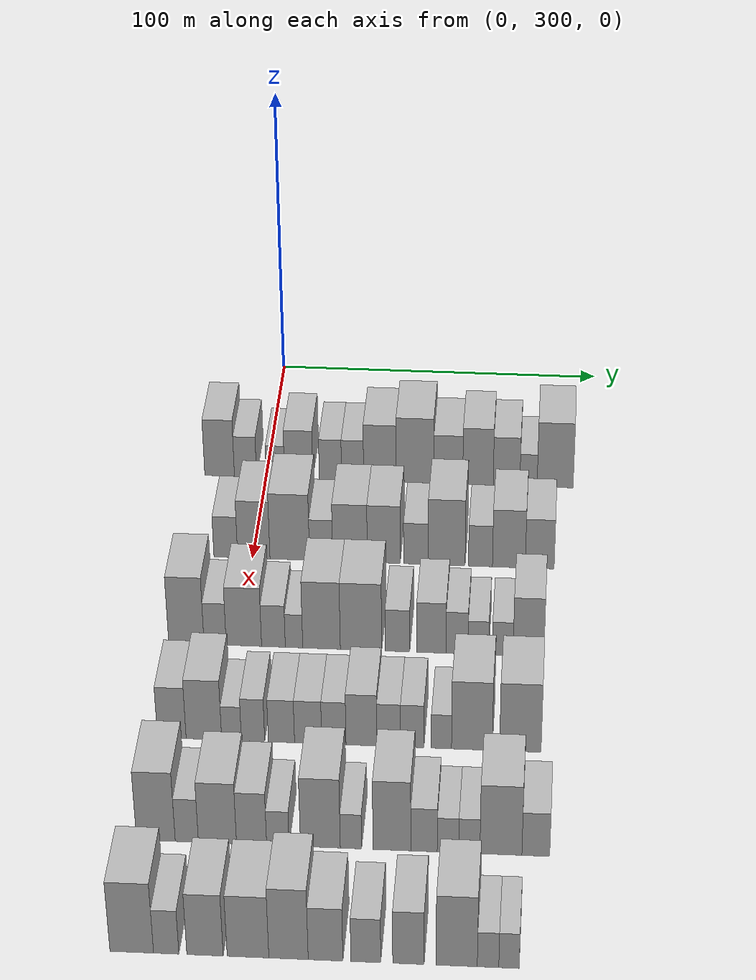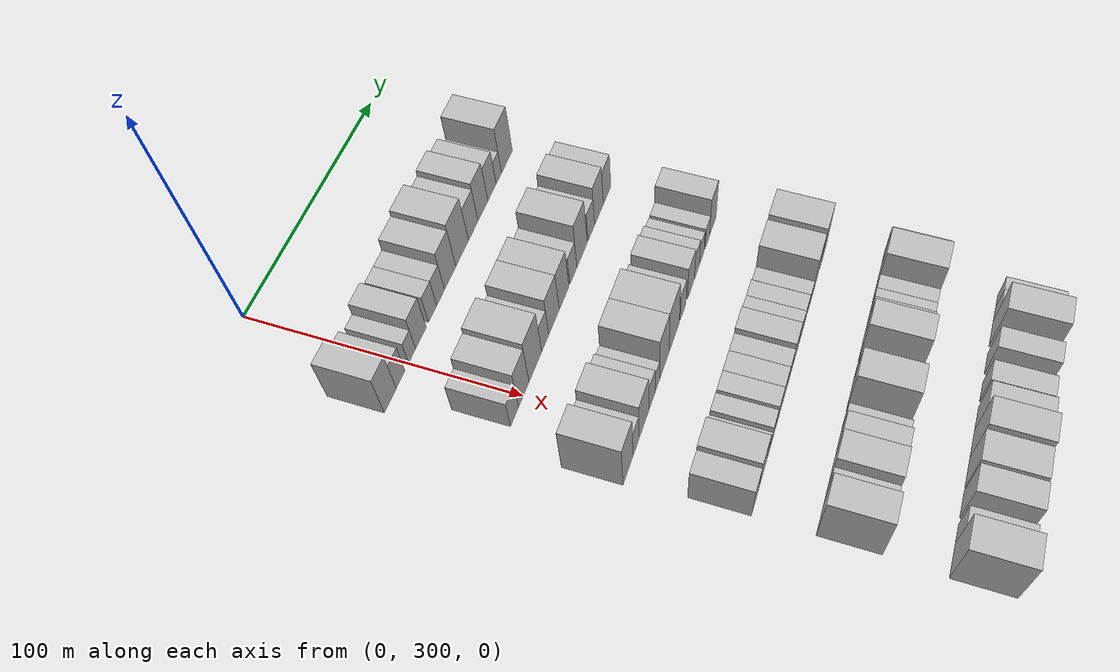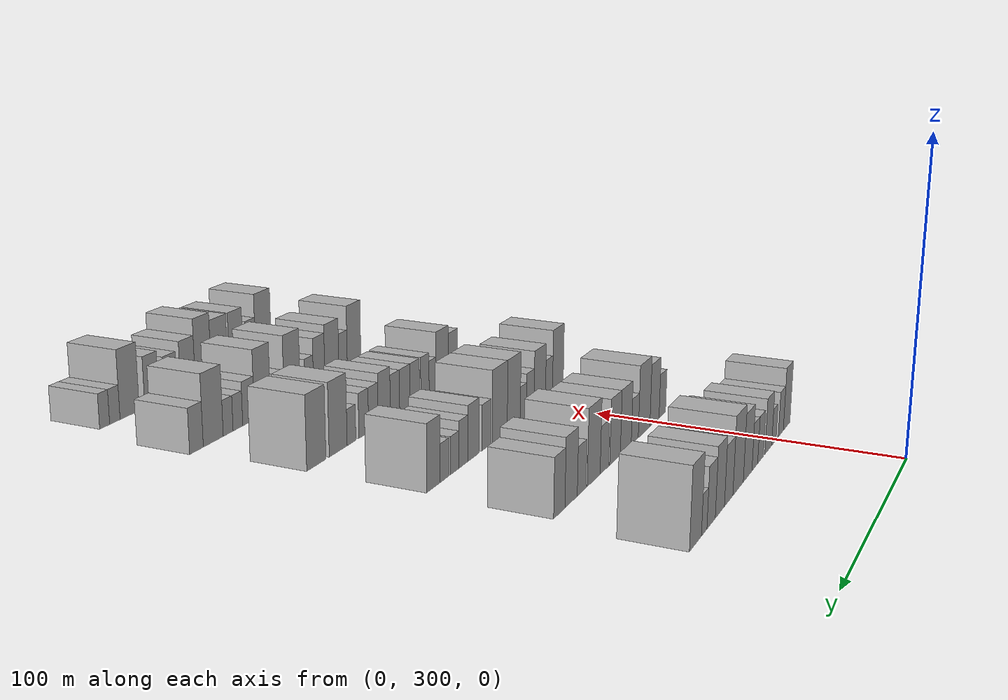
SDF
<sdf version="1.6">
 <world name="default">
  <model name="building_102">
   <static>1</static>
   <pose>50.0000 285.7752 0 0.000000 0.000000 0.000000</pose>
   <link name="link">
    <pose>0 0 10.50 0 0 0</pose>
    <collision name="collision"><geometry><box><size>20.0000 9.1183 21.0000</size></box></geometry></collision>
    <visual name="visual">
     <cast_shadows>0</cast_shadows>
     <geometry><box><size>20.0000 9.1183 21.0000</size></box></geometry>
     <material>
      <script>
       <uri>model://HANNAS_wall/materials/scripts</uri>
       <uri>model://HANNAS_wall/materials/textures</uri>
       <name>vrc/HANNAS_wall</name>
      </script>
     </material>
    </visual>
   </link>
  </model>
  <model name="building_103">
   <static>1</static>
   <pose>50.0000 293.7335 0 0.000000 0.000000 0.000000</pose>
   <link name="link">
    <pose>0 0 7.50 0 0 0</pose>
    <collision name="collision"><geometry><box><size>20.0000 6.7983 15.0000</size></box></geometry></collision>
    <visual name="visual">
     <cast_shadows>0</cast_shadows>
     <geometry><box><size>20.0000 6.7983 15.0000</size></box></geometry>
     <material>
      <script>
       <uri>model://HANNAS_wall/materials/scripts</uri>
       <uri>model://HANNAS_wall/materials/textures</uri>
       <name>vrc/HANNAS_wall</name>
      </script>
     </material>
    </visual>
   </link>
  </model>
  <model name="building_104">
   <static>1</static>
   <pose>50.0000 302.9461 0 0.000000 0.000000 0.000000</pose>
   <link name="link">
    <pose>0 0 6.00 0 0 0</pose>
    <collision name="collision"><geometry><box><size>20.0000 5.6267 12.0000</size></box></geometry></collision>
    <visual name="visual">
     <cast_shadows>0</cast_shadows>
     <geometry><box><size>20.0000 5.6267 12.0000</size></box></geometry>
     <material>
      <script>
       <uri>model://HANNAS_wall/materials/scripts</uri>
       <uri>model://HANNAS_wall/materials/textures</uri>
       <name>vrc/HANNAS_wall</name>
      </script>
     </material>
    </visual>
   </link>
  </model>
  <model name="building_105">
   <static>1</static>
   <pose>50.0000 310.0966 0 0.000000 0.000000 0.000000</pose>
   <link name="link">
    <pose>0 0 9.00 0 0 0</pose>
    <collision name="collision"><geometry><box><size>20.0000 8.6744 18.0000</size></box></geometry></collision>
    <visual name="visual">
     <cast_shadows>0</cast_shadows>
     <geometry><box><size>20.0000 8.6744 18.0000</size></box></geometry>
     <material>
      <script>
       <uri>model://HANNAS_wall/materials/scripts</uri>
       <uri>model://HANNAS_wall/materials/textures</uri>
       <name>vrc/HANNAS_wall</name>
      </script>
     </material>
    </visual>
   </link>
  </model>
  <model name="building_106">
   <static>1</static>
   <pose>50.0000 319.8480 0 0.000000 0.000000 0.000000</pose>
   <link name="link">
    <pose>0 0 7.50 0 0 0</pose>
    <collision name="collision"><geometry><box><size>20.0000 6.8283 15.0000</size></box></geometry></collision>
    <visual name="visual">
     <cast_shadows>0</cast_shadows>
     <geometry><box><size>20.0000 6.8283 15.0000</size></box></geometry>
     <material>
      <script>
       <uri>model://HANNAS_wall/materials/scripts</uri>
       <uri>model://HANNAS_wall/materials/textures</uri>
       <name>vrc/HANNAS_wall</name>
      </script>
     </material>
    </visual>
   </link>
  </model>
  <model name="building_107">
   <static>1</static>
   <pose>50.0000 326.6442 0 0.000000 0.000000 0.000000</pose>
   <link name="link">
    <pose>0 0 7.50 0 0 0</pose>
    <collision name="collision"><geometry><box><size>20.0000 6.7642 15.0000</size></box></geometry></collision>
    <visual name="visual">
     <cast_shadows>0</cast_shadows>
     <geometry><box><size>20.0000 6.7642 15.0000</size></box></geometry>
     <material>
      <script>
       <uri>model://HANNAS_wall/materials/scripts</uri>
       <uri>model://HANNAS_wall/materials/textures</uri>
       <name>vrc/HANNAS_wall</name>
      </script>
     </material>
    </visual>
   </link>
  </model>
  <model name="building_108">
   <static>1</static>
   <pose>50.0000 335.0105 0 0.000000 0.000000 0.000000</pose>
   <link name="link">
    <pose>0 0 10.50 0 0 0</pose>
    <collision name="collision"><geometry><box><size>20.0000 9.9684 21.0000</size></box></geometry></collision>
    <visual name="visual">
     <cast_shadows>0</cast_shadows>
     <geometry><box><size>20.0000 9.9684 21.0000</size></box></geometry>
     <material>
      <script>
       <uri>model://HANNAS_wall/materials/scripts</uri>
       <uri>model://HANNAS_wall/materials/textures</uri>
       <name>vrc/HANNAS_wall</name>
      </script>
     </material>
    </visual>
   </link>
  </model>
  <model name="building_109">
   <static>1</static>
   <pose>50.0000 345.7378 0 0.000000 0.000000 0.000000</pose>
   <link name="link">
    <pose>0 0 12.00 0 0 0</pose>
    <collision name="collision"><geometry><box><size>20.0000 11.4862 24.0000</size></box></geometry></collision>
    <visual name="visual">
     <cast_shadows>0</cast_shadows>
     <geometry><box><size>20.0000 11.4862 24.0000</size></box></geometry>
     <material>
      <script>
       <uri>model://HANNAS_wall/materials/scripts</uri>
       <uri>model://HANNAS_wall/materials/textures</uri>
       <name>vrc/HANNAS_wall</name>
      </script>
     </material>
    </visual>
   </link>
  </model>
  <model name="building_110">
   <static>1</static>
   <pose>50.0000 355.9089 0 0.000000 0.000000 0.000000</pose>
   <link name="link">
    <pose>0 0 9.00 0 0 0</pose>
    <collision name="collision"><geometry><box><size>20.0000 8.8561 18.0000</size></box></geometry></collision>
    <visual name="visual">
     <cast_shadows>0</cast_shadows>
     <geometry><box><size>20.0000 8.8561 18.0000</size></box></geometry>
     <material>
      <script>
       <uri>model://HANNAS_wall/materials/scripts</uri>
       <uri>model://HANNAS_wall/materials/textures</uri>
       <name>vrc/HANNAS_wall</name>
      </script>
     </material>
    </visual>
   </link>
  </model>
  <model name="building_111">
   <static>1</static>
   <pose>50.0000 364.9938 0 0.000000 0.000000 0.000000</pose>
   <link name="link">
    <pose>0 0 10.50 0 0 0</pose>
    <collision name="collision"><geometry><box><size>20.0000 9.3136 21.0000</size></box></geometry></collision>
    <visual name="visual">
     <cast_shadows>0</cast_shadows>
     <geometry><box><size>20.0000 9.3136 21.0000</size></box></geometry>
     <material>
      <script>
       <uri>model://HANNAS_wall/materials/scripts</uri>
       <uri>model://HANNAS_wall/materials/textures</uri>
       <name>vrc/HANNAS_wall</name>
      </script>
     </material>
    </visual>
   </link>
  </model>
  <model name="building_112">
   <static>1</static>
   <pose>50.0000 373.7152 0 0.000000 0.000000 0.000000</pose>
   <link name="link">
    <pose>0 0 9.00 0 0 0</pose>
    <collision name="collision"><geometry><box><size>20.0000 8.1293 18.0000</size></box></geometry></collision>
    <visual name="visual">
     <cast_shadows>0</cast_shadows>
     <geometry><box><size>20.0000 8.1293 18.0000</size></box></geometry>
     <material>
      <script>
       <uri>model://HANNAS_wall/materials/scripts</uri>
       <uri>model://HANNAS_wall/materials/textures</uri>
       <name>vrc/HANNAS_wall</name>
      </script>
     </material>
    </visual>
   </link>
  </model>
  <model name="building_113">
   <static>1</static>
   <pose>50.0000 380.3990 0 0.000000 0.000000 0.000000</pose>
   <link name="link">
    <pose>0 0 6.00 0 0 0</pose>
    <collision name="collision"><geometry><box><size>20.0000 5.2383 12.0000</size></box></geometry></collision>
    <visual name="visual">
     <cast_shadows>0</cast_shadows>
     <geometry><box><size>20.0000 5.2383 12.0000</size></box></geometry>
     <material>
      <script>
       <uri>model://HANNAS_wall/materials/scripts</uri>
       <uri>model://HANNAS_wall/materials/textures</uri>
       <name>vrc/HANNAS_wall</name>
      </script>
     </material>
    </visual>
   </link>
  </model>
  <model name="building_114">
   <static>1</static>
   <pose>50.0000 388.4982 0 0.000000 0.000000 0.000000</pose>
   <link name="link">
    <pose>0 0 12.00 0 0 0</pose>
    <collision name="collision"><geometry><box><size>20.0000 10.9601 24.0000</size></box></geometry></collision>
    <visual name="visual">
     <cast_shadows>0</cast_shadows>
     <geometry><box><size>20.0000 10.9601 24.0000</size></box></geometry>
     <material>
      <script>
       <uri>model://HANNAS_wall/materials/scripts</uri>
       <uri>model://HANNAS_wall/materials/textures</uri>
       <name>vrc/HANNAS_wall</name>
      </script>
     </material>
    </visual>
   </link>
  </model>
  <model name="building_234">
   <static>1</static>
   <pose>90.0000 292.1431 0 0.000000 0.000000 0.000000</pose>
   <link name="link">
    <pose>0 0 7.50 0 0 0</pose>
    <collision name="collision"><geometry><box><size>20.0000 7.0229 15.0000</size></box></geometry></collision>
    <visual name="visual">
     <cast_shadows>0</cast_shadows>
     <geometry><box><size>20.0000 7.0229 15.0000</size></box></geometry>
     <material>
      <script>
       <uri>model://HANNAS_wall/materials/scripts</uri>
       <uri>model://HANNAS_wall/materials/textures</uri>
       <name>vrc/HANNAS_wall</name>
      </script>
     </material>
    </visual>
   </link>
  </model>
  <model name="building_235">
   <static>1</static>
   <pose>90.0000 300.4428 0 0.000000 0.000000 0.000000</pose>
   <link name="link">
    <pose>0 0 10.50 0 0 0</pose>
    <collision name="collision"><geometry><box><size>20.0000 9.5765 21.0000</size></box></geometry></collision>
    <visual name="visual">
     <cast_shadows>0</cast_shadows>
     <geometry><box><size>20.0000 9.5765 21.0000</size></box></geometry>
     <material>
      <script>
       <uri>model://HANNAS_wall/materials/scripts</uri>
       <uri>model://HANNAS_wall/materials/textures</uri>
       <name>vrc/HANNAS_wall</name>
      </script>
     </material>
    </visual>
   </link>
  </model>
  <model name="building_236">
   <static>1</static>
   <pose>90.0000 311.0871 0 0.000000 0.000000 0.000000</pose>
   <link name="link">
    <pose>0 0 12.00 0 0 0</pose>
    <collision name="collision"><geometry><box><size>20.0000 11.7122 24.0000</size></box></geometry></collision>
    <visual name="visual">
     <cast_shadows>0</cast_shadows>
     <geometry><box><size>20.0000 11.7122 24.0000</size></box></geometry>
     <material>
      <script>
       <uri>model://HANNAS_wall/materials/scripts</uri>
       <uri>model://HANNAS_wall/materials/textures</uri>
       <name>vrc/HANNAS_wall</name>
      </script>
     </material>
    </visual>
   </link>
  </model>
  <model name="building_237">
   <static>1</static>
   <pose>90.0000 320.3659 0 0.000000 0.000000 0.000000</pose>
   <link name="link">
    <pose>0 0 7.50 0 0 0</pose>
    <collision name="collision"><geometry><box><size>20.0000 6.8455 15.0000</size></box></geometry></collision>
    <visual name="visual">
     <cast_shadows>0</cast_shadows>
     <geometry><box><size>20.0000 6.8455 15.0000</size></box></geometry>
     <material>
      <script>
       <uri>model://HANNAS_wall/materials/scripts</uri>
       <uri>model://HANNAS_wall/materials/textures</uri>
       <name>vrc/HANNAS_wall</name>
      </script>
     </material>
    </visual>
   </link>
  </model>
  <model name="building_238">
   <static>1</static>
   <pose>90.0000 328.9008 0 0.000000 0.000000 0.000000</pose>
   <link name="link">
    <pose>0 0 10.50 0 0 0</pose>
    <collision name="collision"><geometry><box><size>20.0000 10.2242 21.0000</size></box></geometry></collision>
    <visual name="visual">
     <cast_shadows>0</cast_shadows>
     <geometry><box><size>20.0000 10.2242 21.0000</size></box></geometry>
     <material>
      <script>
       <uri>model://HANNAS_wall/materials/scripts</uri>
       <uri>model://HANNAS_wall/materials/textures</uri>
       <name>vrc/HANNAS_wall</name>
      </script>
     </material>
    </visual>
   </link>
  </model>
  <model name="building_239">
   <static>1</static>
   <pose>90.0000 338.8520 0 0.000000 0.000000 0.000000</pose>
   <link name="link">
    <pose>0 0 10.50 0 0 0</pose>
    <collision name="collision"><geometry><box><size>20.0000 9.6782 21.0000</size></box></geometry></collision>
    <visual name="visual">
     <cast_shadows>0</cast_shadows>
     <geometry><box><size>20.0000 9.6782 21.0000</size></box></geometry>
     <material>
      <script>
       <uri>model://HANNAS_wall/materials/scripts</uri>
       <uri>model://HANNAS_wall/materials/textures</uri>
       <name>vrc/HANNAS_wall</name>
      </script>
     </material>
    </visual>
   </link>
  </model>
  <model name="building_240">
   <static>1</static>
   <pose>90.0000 348.3292 0 0.000000 0.000000 0.000000</pose>
   <link name="link">
    <pose>0 0 7.50 0 0 0</pose>
    <collision name="collision"><geometry><box><size>20.0000 7.2762 15.0000</size></box></geometry></collision>
    <visual name="visual">
     <cast_shadows>0</cast_shadows>
     <geometry><box><size>20.0000 7.2762 15.0000</size></box></geometry>
     <material>
      <script>
       <uri>model://HANNAS_wall/materials/scripts</uri>
       <uri>model://HANNAS_wall/materials/textures</uri>
       <name>vrc/HANNAS_wall</name>
      </script>
     </material>
    </visual>
   </link>
  </model>
  <model name="building_241">
   <static>1</static>
   <pose>90.0000 357.3821 0 0.000000 0.000000 0.000000</pose>
   <link name="link">
    <pose>0 0 12.00 0 0 0</pose>
    <collision name="collision"><geometry><box><size>20.0000 10.8295 24.0000</size></box></geometry></collision>
    <visual name="visual">
     <cast_shadows>0</cast_shadows>
     <geometry><box><size>20.0000 10.8295 24.0000</size></box></geometry>
     <material>
      <script>
       <uri>model://HANNAS_wall/materials/scripts</uri>
       <uri>model://HANNAS_wall/materials/textures</uri>
       <name>vrc/HANNAS_wall</name>
      </script>
     </material>
    </visual>
   </link>
  </model>
  <model name="building_242">
   <static>1</static>
   <pose>90.0000 367.3246 0 0.000000 0.000000 0.000000</pose>
   <link name="link">
    <pose>0 0 7.50 0 0 0</pose>
    <collision name="collision"><geometry><box><size>20.0000 7.0555 15.0000</size></box></geometry></collision>
    <visual name="visual">
     <cast_shadows>0</cast_shadows>
     <geometry><box><size>20.0000 7.0555 15.0000</size></box></geometry>
     <material>
      <script>
       <uri>model://HANNAS_wall/materials/scripts</uri>
       <uri>model://HANNAS_wall/materials/textures</uri>
       <name>vrc/HANNAS_wall</name>
      </script>
     </material>
    </visual>
   </link>
  </model>
  <model name="building_243">
   <static>1</static>
   <pose>90.0000 375.6701 0 0.000000 0.000000 0.000000</pose>
   <link name="link">
    <pose>0 0 10.50 0 0 0</pose>
    <collision name="collision"><geometry><box><size>20.0000 9.6357 21.0000</size></box></geometry></collision>
    <visual name="visual">
     <cast_shadows>0</cast_shadows>
     <geometry><box><size>20.0000 9.6357 21.0000</size></box></geometry>
     <material>
      <script>
       <uri>model://HANNAS_wall/materials/scripts</uri>
       <uri>model://HANNAS_wall/materials/textures</uri>
       <name>vrc/HANNAS_wall</name>
      </script>
     </material>
    </visual>
   </link>
  </model>
  <model name="building_244">
   <static>1</static>
   <pose>90.0000 384.7180 0 0.000000 0.000000 0.000000</pose>
   <link name="link">
    <pose>0 0 9.00 0 0 0</pose>
    <collision name="collision"><geometry><box><size>20.0000 8.4599 18.0000</size></box></geometry></collision>
    <visual name="visual">
     <cast_shadows>0</cast_shadows>
     <geometry><box><size>20.0000 8.4599 18.0000</size></box></geometry>
     <material>
      <script>
       <uri>model://HANNAS_wall/materials/scripts</uri>
       <uri>model://HANNAS_wall/materials/textures</uri>
       <name>vrc/HANNAS_wall</name>
      </script>
     </material>
    </visual>
   </link>
  </model>
  <model name="building_380">
   <static>1</static>
   <pose>130.0000 285.3534 0 0.000000 0.000000 0.000000</pose>
   <link name="link">
    <pose>0 0 12.00 0 0 0</pose>
    <collision name="collision"><geometry><box><size>20.0000 10.0763 24.0000</size></box></geometry></collision>
    <visual name="visual">
     <cast_shadows>0</cast_shadows>
     <geometry><box><size>20.0000 10.0763 24.0000</size></box></geometry>
     <material>
      <script>
       <uri>model://HANNAS_wall/materials/scripts</uri>
       <uri>model://HANNAS_wall/materials/textures</uri>
       <name>vrc/HANNAS_wall</name>
      </script>
     </material>
    </visual>
   </link>
  </model>
  <model name="building_381">
   <static>1</static>
   <pose>130.0000 293.5569 0 0.000000 0.000000 0.000000</pose>
   <link name="link">
    <pose>0 0 7.50 0 0 0</pose>
    <collision name="collision"><geometry><box><size>20.0000 6.3307 15.0000</size></box></geometry></collision>
    <visual name="visual">
     <cast_shadows>0</cast_shadows>
     <geometry><box><size>20.0000 6.3307 15.0000</size></box></geometry>
     <material>
      <script>
       <uri>model://HANNAS_wall/materials/scripts</uri>
       <uri>model://HANNAS_wall/materials/textures</uri>
       <name>vrc/HANNAS_wall</name>
      </script>
     </material>
    </visual>
   </link>
  </model>
  <model name="building_382">
   <static>1</static>
   <pose>130.0000 301.7627 0 0.000000 0.000000 0.000000</pose>
   <link name="link">
    <pose>0 0 10.50 0 0 0</pose>
    <collision name="collision"><geometry><box><size>20.0000 10.0807 21.0000</size></box></geometry></collision>
    <visual name="visual">
     <cast_shadows>0</cast_shadows>
     <geometry><box><size>20.0000 10.0807 21.0000</size></box></geometry>
     <material>
      <script>
       <uri>model://HANNAS_wall/materials/scripts</uri>
       <uri>model://HANNAS_wall/materials/textures</uri>
       <name>vrc/HANNAS_wall</name>
      </script>
     </material>
    </visual>
   </link>
  </model>
  <model name="building_383">
   <static>1</static>
   <pose>130.0000 310.1778 0 0.000000 0.000000 0.000000</pose>
   <link name="link">
    <pose>0 0 7.50 0 0 0</pose>
    <collision name="collision"><geometry><box><size>20.0000 6.7496 15.0000</size></box></geometry></collision>
    <visual name="visual">
     <cast_shadows>0</cast_shadows>
     <geometry><box><size>20.0000 6.7496 15.0000</size></box></geometry>
     <material>
      <script>
       <uri>model://HANNAS_wall/materials/scripts</uri>
       <uri>model://HANNAS_wall/materials/textures</uri>
       <name>vrc/HANNAS_wall</name>
      </script>
     </material>
    </visual>
   </link>
  </model>
  <model name="building_384">
   <static>1</static>
   <pose>130.0000 316.0339 0 0.000000 0.000000 0.000000</pose>
   <link name="link">
    <pose>0 0 6.00 0 0 0</pose>
    <collision name="collision"><geometry><box><size>20.0000 4.9626 12.0000</size></box></geometry></collision>
    <visual name="visual">
     <cast_shadows>0</cast_shadows>
     <geometry><box><size>20.0000 4.9626 12.0000</size></box></geometry>
     <material>
      <script>
       <uri>model://HANNAS_wall/materials/scripts</uri>
       <uri>model://HANNAS_wall/materials/textures</uri>
       <name>vrc/HANNAS_wall</name>
      </script>
     </material>
    </visual>
   </link>
  </model>
  <model name="building_385">
   <static>1</static>
   <pose>130.0000 323.8561 0 0.000000 0.000000 0.000000</pose>
   <link name="link">
    <pose>0 0 12.00 0 0 0</pose>
    <collision name="collision"><geometry><box><size>20.0000 10.6819 24.0000</size></box></geometry></collision>
    <visual name="visual">
     <cast_shadows>0</cast_shadows>
     <geometry><box><size>20.0000 10.6819 24.0000</size></box></geometry>
     <material>
      <script>
       <uri>model://HANNAS_wall/materials/scripts</uri>
       <uri>model://HANNAS_wall/materials/textures</uri>
       <name>vrc/HANNAS_wall</name>
      </script>
     </material>
    </visual>
   </link>
  </model>
  <model name="building_386">
   <static>1</static>
   <pose>130.0000 335.0658 0 0.000000 0.000000 0.000000</pose>
   <link name="link">
    <pose>0 0 12.00 0 0 0</pose>
    <collision name="collision"><geometry><box><size>20.0000 11.7375 24.0000</size></box></geometry></collision>
    <visual name="visual">
     <cast_shadows>0</cast_shadows>
     <geometry><box><size>20.0000 11.7375 24.0000</size></box></geometry>
     <material>
      <script>
       <uri>model://HANNAS_wall/materials/scripts</uri>
       <uri>model://HANNAS_wall/materials/textures</uri>
       <name>vrc/HANNAS_wall</name>
      </script>
     </material>
    </visual>
   </link>
  </model>
  <model name="building_387">
   <static>1</static>
   <pose>130.0000 345.4022 0 0.000000 0.000000 0.000000</pose>
   <link name="link">
    <pose>0 0 7.50 0 0 0</pose>
    <collision name="collision"><geometry><box><size>20.0000 6.9352 15.0000</size></box></geometry></collision>
    <visual name="visual">
     <cast_shadows>0</cast_shadows>
     <geometry><box><size>20.0000 6.9352 15.0000</size></box></geometry>
     <material>
      <script>
       <uri>model://HANNAS_wall/materials/scripts</uri>
       <uri>model://HANNAS_wall/materials/textures</uri>
       <name>vrc/HANNAS_wall</name>
      </script>
     </material>
    </visual>
   </link>
  </model>
  <model name="building_388">
   <static>1</static>
   <pose>130.0000 355.0157 0 0.000000 0.000000 0.000000</pose>
   <link name="link">
    <pose>0 0 9.00 0 0 0</pose>
    <collision name="collision"><geometry><box><size>20.0000 8.2919 18.0000</size></box></geometry></collision>
    <visual name="visual">
     <cast_shadows>0</cast_shadows>
     <geometry><box><size>20.0000 8.2919 18.0000</size></box></geometry>
     <material>
      <script>
       <uri>model://HANNAS_wall/materials/scripts</uri>
       <uri>model://HANNAS_wall/materials/textures</uri>
       <name>vrc/HANNAS_wall</name>
      </script>
     </material>
    </visual>
   </link>
  </model>
  <model name="building_389">
   <static>1</static>
   <pose>130.0000 362.2595 0 0.000000 0.000000 0.000000</pose>
   <link name="link">
    <pose>0 0 7.50 0 0 0</pose>
    <collision name="collision"><geometry><box><size>20.0000 6.1959 15.0000</size></box></geometry></collision>
    <visual name="visual">
     <cast_shadows>0</cast_shadows>
     <geometry><box><size>20.0000 6.1959 15.0000</size></box></geometry>
     <material>
      <script>
       <uri>model://HANNAS_wall/materials/scripts</uri>
       <uri>model://HANNAS_wall/materials/textures</uri>
       <name>vrc/HANNAS_wall</name>
      </script>
     </material>
    </visual>
   </link>
  </model>
  <model name="building_390">
   <static>1</static>
   <pose>130.0000 368.2835 0 0.000000 0.000000 0.000000</pose>
   <link name="link">
    <pose>0 0 6.00 0 0 0</pose>
    <collision name="collision"><geometry><box><size>20.0000 5.8521 12.0000</size></box></geometry></collision>
    <visual name="visual">
     <cast_shadows>0</cast_shadows>
     <geometry><box><size>20.0000 5.8521 12.0000</size></box></geometry>
     <material>
      <script>
       <uri>model://HANNAS_wall/materials/scripts</uri>
       <uri>model://HANNAS_wall/materials/textures</uri>
       <name>vrc/HANNAS_wall</name>
      </script>
     </material>
    </visual>
   </link>
  </model>
  <model name="building_391">
   <static>1</static>
   <pose>130.0000 375.1691 0 0.000000 0.000000 0.000000</pose>
   <link name="link">
    <pose>0 0 6.00 0 0 0</pose>
    <collision name="collision"><geometry><box><size>20.0000 5.9192 12.0000</size></box></geometry></collision>
    <visual name="visual">
     <cast_shadows>0</cast_shadows>
     <geometry><box><size>20.0000 5.9192 12.0000</size></box></geometry>
     <material>
      <script>
       <uri>model://HANNAS_wall/materials/scripts</uri>
       <uri>model://HANNAS_wall/materials/textures</uri>
       <name>vrc/HANNAS_wall</name>
      </script>
     </material>
    </visual>
   </link>
  </model>
  <model name="building_392">
   <static>1</static>
   <pose>130.0000 382.4756 0 0.000000 0.000000 0.000000</pose>
   <link name="link">
    <pose>0 0 10.50 0 0 0</pose>
    <collision name="collision"><geometry><box><size>20.0000 8.6937 21.0000</size></box></geometry></collision>
    <visual name="visual">
     <cast_shadows>0</cast_shadows>
     <geometry><box><size>20.0000 8.6937 21.0000</size></box></geometry>
     <material>
      <script>
       <uri>model://HANNAS_wall/materials/scripts</uri>
       <uri>model://HANNAS_wall/materials/textures</uri>
       <name>vrc/HANNAS_wall</name>
      </script>
     </material>
    </visual>
   </link>
  </model>
  <model name="building_512">
   <static>1</static>
   <pose>170.0000 286.2847 0 0.000000 0.000000 0.000000</pose>
   <link name="link">
    <pose>0 0 9.00 0 0 0</pose>
    <collision name="collision"><geometry><box><size>20.0000 7.8461 18.0000</size></box></geometry></collision>
    <visual name="visual">
     <cast_shadows>0</cast_shadows>
     <geometry><box><size>20.0000 7.8461 18.0000</size></box></geometry>
     <material>
      <script>
       <uri>model://HANNAS_wall/materials/scripts</uri>
       <uri>model://HANNAS_wall/materials/textures</uri>
       <name>vrc/HANNAS_wall</name>
      </script>
     </material>
    </visual>
   </link>
  </model>
  <model name="building_513">
   <static>1</static>
   <pose>170.0000 295.0794 0 0.000000 0.000000 0.000000</pose>
   <link name="link">
    <pose>0 0 10.50 0 0 0</pose>
    <collision name="collision"><geometry><box><size>20.0000 9.7433 21.0000</size></box></geometry></collision>
    <visual name="visual">
     <cast_shadows>0</cast_shadows>
     <geometry><box><size>20.0000 9.7433 21.0000</size></box></geometry>
     <material>
      <script>
       <uri>model://HANNAS_wall/materials/scripts</uri>
       <uri>model://HANNAS_wall/materials/textures</uri>
       <name>vrc/HANNAS_wall</name>
      </script>
     </material>
    </visual>
   </link>
  </model>
  <model name="building_514">
   <static>1</static>
   <pose>170.0000 302.6440 0 0.000000 0.000000 0.000000</pose>
   <link name="link">
    <pose>0 0 6.00 0 0 0</pose>
    <collision name="collision"><geometry><box><size>20.0000 5.3858 12.0000</size></box></geometry></collision>
    <visual name="visual">
     <cast_shadows>0</cast_shadows>
     <geometry><box><size>20.0000 5.3858 12.0000</size></box></geometry>
     <material>
      <script>
       <uri>model://HANNAS_wall/materials/scripts</uri>
       <uri>model://HANNAS_wall/materials/textures</uri>
       <name>vrc/HANNAS_wall</name>
      </script>
     </material>
    </visual>
   </link>
  </model>
  <model name="building_515">
   <static>1</static>
   <pose>170.0000 308.5276 0 0.000000 0.000000 0.000000</pose>
   <link name="link">
    <pose>0 0 7.50 0 0 0</pose>
    <collision name="collision"><geometry><box><size>20.0000 6.3815 15.0000</size></box></geometry></collision>
    <visual name="visual">
     <cast_shadows>0</cast_shadows>
     <geometry><box><size>20.0000 6.3815 15.0000</size></box></geometry>
     <material>
      <script>
       <uri>model://HANNAS_wall/materials/scripts</uri>
       <uri>model://HANNAS_wall/materials/textures</uri>
       <name>vrc/HANNAS_wall</name>
      </script>
     </material>
    </visual>
   </link>
  </model>
  <model name="building_516">
   <static>1</static>
   <pose>170.0000 316.2947 0 0.000000 0.000000 0.000000</pose>
   <link name="link">
    <pose>0 0 7.50 0 0 0</pose>
    <collision name="collision"><geometry><box><size>20.0000 7.1526 15.0000</size></box></geometry></collision>
    <visual name="visual">
     <cast_shadows>0</cast_shadows>
     <geometry><box><size>20.0000 7.1526 15.0000</size></box></geometry>
     <material>
      <script>
       <uri>model://HANNAS_wall/materials/scripts</uri>
       <uri>model://HANNAS_wall/materials/textures</uri>
       <name>vrc/HANNAS_wall</name>
      </script>
     </material>
    </visual>
   </link>
  </model>
  <model name="building_517">
   <static>1</static>
   <pose>170.0000 323.5796 0 0.000000 0.000000 0.000000</pose>
   <link name="link">
    <pose>0 0 7.50 0 0 0</pose>
    <collision name="collision"><geometry><box><size>20.0000 7.4172 15.0000</size></box></geometry></collision>
    <visual name="visual">
     <cast_shadows>0</cast_shadows>
     <geometry><box><size>20.0000 7.4172 15.0000</size></box></geometry>
     <material>
      <script>
       <uri>model://HANNAS_wall/materials/scripts</uri>
       <uri>model://HANNAS_wall/materials/textures</uri>
       <name>vrc/HANNAS_wall</name>
      </script>
     </material>
    </visual>
   </link>
  </model>
  <model name="building_518">
   <static>1</static>
   <pose>170.0000 330.6040 0 0.000000 0.000000 0.000000</pose>
   <link name="link">
    <pose>0 0 7.50 0 0 0</pose>
    <collision name="collision"><geometry><box><size>20.0000 6.6316 15.0000</size></box></geometry></collision>
    <visual name="visual">
     <cast_shadows>0</cast_shadows>
     <geometry><box><size>20.0000 6.6316 15.0000</size></box></geometry>
     <material>
      <script>
       <uri>model://HANNAS_wall/materials/scripts</uri>
       <uri>model://HANNAS_wall/materials/textures</uri>
       <name>vrc/HANNAS_wall</name>
      </script>
     </material>
    </visual>
   </link>
  </model>
  <model name="building_519">
   <static>1</static>
   <pose>170.0000 338.1189 0 0.000000 0.000000 0.000000</pose>
   <link name="link">
    <pose>0 0 9.00 0 0 0</pose>
    <collision name="collision"><geometry><box><size>20.0000 8.3982 18.0000</size></box></geometry></collision>
    <visual name="visual">
     <cast_shadows>0</cast_shadows>
     <geometry><box><size>20.0000 8.3982 18.0000</size></box></geometry>
     <material>
      <script>
       <uri>model://HANNAS_wall/materials/scripts</uri>
       <uri>model://HANNAS_wall/materials/textures</uri>
       <name>vrc/HANNAS_wall</name>
      </script>
     </material>
    </visual>
   </link>
  </model>
  <model name="building_520">
   <static>1</static>
   <pose>170.0000 345.5341 0 0.000000 0.000000 0.000000</pose>
   <link name="link">
    <pose>0 0 7.50 0 0 0</pose>
    <collision name="collision"><geometry><box><size>20.0000 6.4322 15.0000</size></box></geometry></collision>
    <visual name="visual">
     <cast_shadows>0</cast_shadows>
     <geometry><box><size>20.0000 6.4322 15.0000</size></box></geometry>
     <material>
      <script>
       <uri>model://HANNAS_wall/materials/scripts</uri>
       <uri>model://HANNAS_wall/materials/textures</uri>
       <name>vrc/HANNAS_wall</name>
      </script>
     </material>
    </visual>
   </link>
  </model>
  <model name="building_521">
   <static>1</static>
   <pose>170.0000 351.9374 0 0.000000 0.000000 0.000000</pose>
   <link name="link">
    <pose>0 0 7.50 0 0 0</pose>
    <collision name="collision"><geometry><box><size>20.0000 6.3743 15.0000</size></box></geometry></collision>
    <visual name="visual">
     <cast_shadows>0</cast_shadows>
     <geometry><box><size>20.0000 6.3743 15.0000</size></box></geometry>
     <material>
      <script>
       <uri>model://HANNAS_wall/materials/scripts</uri>
       <uri>model://HANNAS_wall/materials/textures</uri>
       <name>vrc/HANNAS_wall</name>
      </script>
     </material>
    </visual>
   </link>
  </model>
  <model name="building_522">
   <static>1</static>
   <pose>170.0000 359.8731 0 0.000000 0.000000 0.000000</pose>
   <link name="link">
    <pose>0 0 6.00 0 0 0</pose>
    <collision name="collision"><geometry><box><size>20.0000 5.4970 12.0000</size></box></geometry></collision>
    <visual name="visual">
     <cast_shadows>0</cast_shadows>
     <geometry><box><size>20.0000 5.4970 12.0000</size></box></geometry>
     <material>
      <script>
       <uri>model://HANNAS_wall/materials/scripts</uri>
       <uri>model://HANNAS_wall/materials/textures</uri>
       <name>vrc/HANNAS_wall</name>
      </script>
     </material>
    </visual>
   </link>
  </model>
  <model name="building_523">
   <static>1</static>
   <pose>170.0000 368.1466 0 0.000000 0.000000 0.000000</pose>
   <link name="link">
    <pose>0 0 12.00 0 0 0</pose>
    <collision name="collision"><geometry><box><size>20.0000 11.0502 24.0000</size></box></geometry></collision>
    <visual name="visual">
     <cast_shadows>0</cast_shadows>
     <geometry><box><size>20.0000 11.0502 24.0000</size></box></geometry>
     <material>
      <script>
       <uri>model://HANNAS_wall/materials/scripts</uri>
       <uri>model://HANNAS_wall/materials/textures</uri>
       <name>vrc/HANNAS_wall</name>
      </script>
     </material>
    </visual>
   </link>
  </model>
  <model name="building_524">
   <static>1</static>
   <pose>170.0000 381.2849 0 0.000000 0.000000 0.000000</pose>
   <link name="link">
    <pose>0 0 12.00 0 0 0</pose>
    <collision name="collision"><geometry><box><size>20.0000 11.2263 24.0000</size></box></geometry></collision>
    <visual name="visual">
     <cast_shadows>0</cast_shadows>
     <geometry><box><size>20.0000 11.2263 24.0000</size></box></geometry>
     <material>
      <script>
       <uri>model://HANNAS_wall/materials/scripts</uri>
       <uri>model://HANNAS_wall/materials/textures</uri>
       <name>vrc/HANNAS_wall</name>
      </script>
     </material>
    </visual>
   </link>
  </model>
  <model name="building_645">
   <static>1</static>
   <pose>210.0000 287.1877 0 0.000000 0.000000 0.000000</pose>
   <link name="link">
    <pose>0 0 12.00 0 0 0</pose>
    <collision name="collision"><geometry><box><size>20.0000 10.1624 24.0000</size></box></geometry></collision>
    <visual name="visual">
     <cast_shadows>0</cast_shadows>
     <geometry><box><size>20.0000 10.1624 24.0000</size></box></geometry>
     <material>
      <script>
       <uri>model://HANNAS_wall/materials/scripts</uri>
       <uri>model://HANNAS_wall/materials/textures</uri>
       <name>vrc/HANNAS_wall</name>
      </script>
     </material>
    </visual>
   </link>
  </model>
  <model name="building_646">
   <static>1</static>
   <pose>210.0000 295.3067 0 0.000000 0.000000 0.000000</pose>
   <link name="link">
    <pose>0 0 7.50 0 0 0</pose>
    <collision name="collision"><geometry><box><size>20.0000 6.0755 15.0000</size></box></geometry></collision>
    <visual name="visual">
     <cast_shadows>0</cast_shadows>
     <geometry><box><size>20.0000 6.0755 15.0000</size></box></geometry>
     <material>
      <script>
       <uri>model://HANNAS_wall/materials/scripts</uri>
       <uri>model://HANNAS_wall/materials/textures</uri>
       <name>vrc/HANNAS_wall</name>
      </script>
     </material>
    </visual>
   </link>
  </model>
  <model name="building_647">
   <static>1</static>
   <pose>210.0000 303.3453 0 0.000000 0.000000 0.000000</pose>
   <link name="link">
    <pose>0 0 10.50 0 0 0</pose>
    <collision name="collision"><geometry><box><size>20.0000 10.0018 21.0000</size></box></geometry></collision>
    <visual name="visual">
     <cast_shadows>0</cast_shadows>
     <geometry><box><size>20.0000 10.0018 21.0000</size></box></geometry>
     <material>
      <script>
       <uri>model://HANNAS_wall/materials/scripts</uri>
       <uri>model://HANNAS_wall/materials/textures</uri>
       <name>vrc/HANNAS_wall</name>
      </script>
     </material>
    </visual>
   </link>
  </model>
  <model name="building_648">
   <static>1</static>
   <pose>210.0000 312.2938 0 0.000000 0.000000 0.000000</pose>
   <link name="link">
    <pose>0 0 9.00 0 0 0</pose>
    <collision name="collision"><geometry><box><size>20.0000 7.8952 18.0000</size></box></geometry></collision>
    <visual name="visual">
     <cast_shadows>0</cast_shadows>
     <geometry><box><size>20.0000 7.8952 18.0000</size></box></geometry>
     <material>
      <script>
       <uri>model://HANNAS_wall/materials/scripts</uri>
       <uri>model://HANNAS_wall/materials/textures</uri>
       <name>vrc/HANNAS_wall</name>
      </script>
     </material>
    </visual>
   </link>
  </model>
  <model name="building_649">
   <static>1</static>
   <pose>210.0000 319.1795 0 0.000000 0.000000 0.000000</pose>
   <link name="link">
    <pose>0 0 6.00 0 0 0</pose>
    <collision name="collision"><geometry><box><size>20.0000 5.8763 12.0000</size></box></geometry></collision>
    <visual name="visual">
     <cast_shadows>0</cast_shadows>
     <geometry><box><size>20.0000 5.8763 12.0000</size></box></geometry>
     <material>
      <script>
       <uri>model://HANNAS_wall/materials/scripts</uri>
       <uri>model://HANNAS_wall/materials/textures</uri>
       <name>vrc/HANNAS_wall</name>
      </script>
     </material>
    </visual>
   </link>
  </model>
  <model name="building_650">
   <static>1</static>
   <pose>210.0000 330.3148 0 0.000000 0.000000 0.000000</pose>
   <link name="link">
    <pose>0 0 12.00 0 0 0</pose>
    <collision name="collision"><geometry><box><size>20.0000 10.3942 24.0000</size></box></geometry></collision>
    <visual name="visual">
     <cast_shadows>0</cast_shadows>
     <geometry><box><size>20.0000 10.3942 24.0000</size></box></geometry>
     <material>
      <script>
       <uri>model://HANNAS_wall/materials/scripts</uri>
       <uri>model://HANNAS_wall/materials/textures</uri>
       <name>vrc/HANNAS_wall</name>
      </script>
     </material>
    </visual>
   </link>
  </model>
  <model name="building_651">
   <static>1</static>
   <pose>210.0000 338.2947 0 0.000000 0.000000 0.000000</pose>
   <link name="link">
    <pose>0 0 6.00 0 0 0</pose>
    <collision name="collision"><geometry><box><size>20.0000 5.5658 12.0000</size></box></geometry></collision>
    <visual name="visual">
     <cast_shadows>0</cast_shadows>
     <geometry><box><size>20.0000 5.5658 12.0000</size></box></geometry>
     <material>
      <script>
       <uri>model://HANNAS_wall/materials/scripts</uri>
       <uri>model://HANNAS_wall/materials/textures</uri>
       <name>vrc/HANNAS_wall</name>
      </script>
     </material>
    </visual>
   </link>
  </model>
  <model name="building_652">
   <static>1</static>
   <pose>210.0000 348.9873 0 0.000000 0.000000 0.000000</pose>
   <link name="link">
    <pose>0 0 12.00 0 0 0</pose>
    <collision name="collision"><geometry><box><size>20.0000 9.8194 24.0000</size></box></geometry></collision>
    <visual name="visual">
     <cast_shadows>0</cast_shadows>
     <geometry><box><size>20.0000 9.8194 24.0000</size></box></geometry>
     <material>
      <script>
       <uri>model://HANNAS_wall/materials/scripts</uri>
       <uri>model://HANNAS_wall/materials/textures</uri>
       <name>vrc/HANNAS_wall</name>
      </script>
     </material>
    </visual>
   </link>
  </model>
  <model name="building_653">
   <static>1</static>
   <pose>210.0000 357.3459 0 0.000000 0.000000 0.000000</pose>
   <link name="link">
    <pose>0 0 7.50 0 0 0</pose>
    <collision name="collision"><geometry><box><size>20.0000 6.8977 15.0000</size></box></geometry></collision>
    <visual name="visual">
     <cast_shadows>0</cast_shadows>
     <geometry><box><size>20.0000 6.8977 15.0000</size></box></geometry>
     <material>
      <script>
       <uri>model://HANNAS_wall/materials/scripts</uri>
       <uri>model://HANNAS_wall/materials/textures</uri>
       <name>vrc/HANNAS_wall</name>
      </script>
     </material>
    </visual>
   </link>
  </model>
  <model name="building_654">
   <static>1</static>
   <pose>210.0000 363.5847 0 0.000000 0.000000 0.000000</pose>
   <link name="link">
    <pose>0 0 6.00 0 0 0</pose>
    <collision name="collision"><geometry><box><size>20.0000 5.5799 12.0000</size></box></geometry></collision>
    <visual name="visual">
     <cast_shadows>0</cast_shadows>
     <geometry><box><size>20.0000 5.5799 12.0000</size></box></geometry>
     <material>
      <script>
       <uri>model://HANNAS_wall/materials/scripts</uri>
       <uri>model://HANNAS_wall/materials/textures</uri>
       <name>vrc/HANNAS_wall</name>
      </script>
     </material>
    </visual>
   </link>
  </model>
  <model name="building_655">
   <static>1</static>
   <pose>210.0000 369.1476 0 0.000000 0.000000 0.000000</pose>
   <link name="link">
    <pose>0 0 6.00 0 0 0</pose>
    <collision name="collision"><geometry><box><size>20.0000 5.5459 12.0000</size></box></geometry></collision>
    <visual name="visual">
     <cast_shadows>0</cast_shadows>
     <geometry><box><size>20.0000 5.5459 12.0000</size></box></geometry>
     <material>
      <script>
       <uri>model://HANNAS_wall/materials/scripts</uri>
       <uri>model://HANNAS_wall/materials/textures</uri>
       <name>vrc/HANNAS_wall</name>
      </script>
     </material>
    </visual>
   </link>
  </model>
  <model name="building_656">
   <static>1</static>
   <pose>210.0000 377.3736 0 0.000000 0.000000 0.000000</pose>
   <link name="link">
    <pose>0 0 12.00 0 0 0</pose>
    <collision name="collision"><geometry><box><size>20.0000 10.9061 24.0000</size></box></geometry></collision>
    <visual name="visual">
     <cast_shadows>0</cast_shadows>
     <geometry><box><size>20.0000 10.9061 24.0000</size></box></geometry>
     <material>
      <script>
       <uri>model://HANNAS_wall/materials/scripts</uri>
       <uri>model://HANNAS_wall/materials/textures</uri>
       <name>vrc/HANNAS_wall</name>
      </script>
     </material>
    </visual>
   </link>
  </model>
  <model name="building_657">
   <static>1</static>
   <pose>210.0000 386.4303 0 0.000000 0.000000 0.000000</pose>
   <link name="link">
    <pose>0 0 7.50 0 0 0</pose>
    <collision name="collision"><geometry><box><size>20.0000 7.2075 15.0000</size></box></geometry></collision>
    <visual name="visual">
     <cast_shadows>0</cast_shadows>
     <geometry><box><size>20.0000 7.2075 15.0000</size></box></geometry>
     <material>
      <script>
       <uri>model://HANNAS_wall/materials/scripts</uri>
       <uri>model://HANNAS_wall/materials/textures</uri>
       <name>vrc/HANNAS_wall</name>
      </script>
     </material>
    </visual>
   </link>
  </model>
  <model name="building_779">
   <static>1</static>
   <pose>250.0000 286.3721 0 0.000000 0.000000 0.000000</pose>
   <link name="link">
    <pose>0 0 12.00 0 0 0</pose>
    <collision name="collision"><geometry><box><size>20.0000 10.9666 24.0000</size></box></geometry></collision>
    <visual name="visual">
     <cast_shadows>0</cast_shadows>
     <geometry><box><size>20.0000 10.9666 24.0000</size></box></geometry>
     <material>
      <script>
       <uri>model://HANNAS_wall/materials/scripts</uri>
       <uri>model://HANNAS_wall/materials/textures</uri>
       <name>vrc/HANNAS_wall</name>
      </script>
     </material>
    </visual>
   </link>
  </model>
  <model name="building_780">
   <static>1</static>
   <pose>250.0000 295.0371 0 0.000000 0.000000 0.000000</pose>
   <link name="link">
    <pose>0 0 7.50 0 0 0</pose>
    <collision name="collision"><geometry><box><size>20.0000 6.3634 15.0000</size></box></geometry></collision>
    <visual name="visual">
     <cast_shadows>0</cast_shadows>
     <geometry><box><size>20.0000 6.3634 15.0000</size></box></geometry>
     <material>
      <script>
       <uri>model://HANNAS_wall/materials/scripts</uri>
       <uri>model://HANNAS_wall/materials/textures</uri>
       <name>vrc/HANNAS_wall</name>
      </script>
     </material>
    </visual>
   </link>
  </model>
  <model name="building_781">
   <static>1</static>
   <pose>250.0000 304.7811 0 0.000000 0.000000 0.000000</pose>
   <link name="link">
    <pose>0 0 10.50 0 0 0</pose>
    <collision name="collision"><geometry><box><size>20.0000 9.1246 21.0000</size></box></geometry></collision>
    <visual name="visual">
     <cast_shadows>0</cast_shadows>
     <geometry><box><size>20.0000 9.1246 21.0000</size></box></geometry>
     <material>
      <script>
       <uri>model://HANNAS_wall/materials/scripts</uri>
       <uri>model://HANNAS_wall/materials/textures</uri>
       <name>vrc/HANNAS_wall</name>
      </script>
     </material>
    </visual>
   </link>
  </model>
  <model name="building_782">
   <static>1</static>
   <pose>250.0000 315.5684 0 0.000000 0.000000 0.000000</pose>
   <link name="link">
    <pose>0 0 10.50 0 0 0</pose>
    <collision name="collision"><geometry><box><size>20.0000 10.4501 21.0000</size></box></geometry></collision>
    <visual name="visual">
     <cast_shadows>0</cast_shadows>
     <geometry><box><size>20.0000 10.4501 21.0000</size></box></geometry>
     <material>
      <script>
       <uri>model://HANNAS_wall/materials/scripts</uri>
       <uri>model://HANNAS_wall/materials/textures</uri>
       <name>vrc/HANNAS_wall</name>
      </script>
     </material>
    </visual>
   </link>
  </model>
  <model name="building_783">
   <static>1</static>
   <pose>250.0000 325.7202 0 0.000000 0.000000 0.000000</pose>
   <link name="link">
    <pose>0 0 12.00 0 0 0</pose>
    <collision name="collision"><geometry><box><size>20.0000 9.8534 24.0000</size></box></geometry></collision>
    <visual name="visual">
     <cast_shadows>0</cast_shadows>
     <geometry><box><size>20.0000 9.8534 24.0000</size></box></geometry>
     <material>
      <script>
       <uri>model://HANNAS_wall/materials/scripts</uri>
       <uri>model://HANNAS_wall/materials/textures</uri>
       <name>vrc/HANNAS_wall</name>
      </script>
     </material>
    </visual>
   </link>
  </model>
  <model name="building_784">
   <static>1</static>
   <pose>250.0000 334.9841 0 0.000000 0.000000 0.000000</pose>
   <link name="link">
    <pose>0 0 9.00 0 0 0</pose>
    <collision name="collision"><geometry><box><size>20.0000 8.6743 18.0000</size></box></geometry></collision>
    <visual name="visual">
     <cast_shadows>0</cast_shadows>
     <geometry><box><size>20.0000 8.6743 18.0000</size></box></geometry>
     <material>
      <script>
       <uri>model://HANNAS_wall/materials/scripts</uri>
       <uri>model://HANNAS_wall/materials/textures</uri>
       <name>vrc/HANNAS_wall</name>
      </script>
     </material>
    </visual>
   </link>
  </model>
  <model name="building_785">
   <static>1</static>
   <pose>250.0000 345.0485 0 0.000000 0.000000 0.000000</pose>
   <link name="link">
    <pose>0 0 7.50 0 0 0</pose>
    <collision name="collision"><geometry><box><size>20.0000 7.4545 15.0000</size></box></geometry></collision>
    <visual name="visual">
     <cast_shadows>0</cast_shadows>
     <geometry><box><size>20.0000 7.4545 15.0000</size></box></geometry>
     <material>
      <script>
       <uri>model://HANNAS_wall/materials/scripts</uri>
       <uri>model://HANNAS_wall/materials/textures</uri>
       <name>vrc/HANNAS_wall</name>
      </script>
     </material>
    </visual>
   </link>
  </model>
  <model name="building_786">
   <static>1</static>
   <pose>250.0000 355.6881 0 0.000000 0.000000 0.000000</pose>
   <link name="link">
    <pose>0 0 9.00 0 0 0</pose>
    <collision name="collision"><geometry><box><size>20.0000 7.8248 18.0000</size></box></geometry></collision>
    <visual name="visual">
     <cast_shadows>0</cast_shadows>
     <geometry><box><size>20.0000 7.8248 18.0000</size></box></geometry>
     <material>
      <script>
       <uri>model://HANNAS_wall/materials/scripts</uri>
       <uri>model://HANNAS_wall/materials/textures</uri>
       <name>vrc/HANNAS_wall</name>
      </script>
     </material>
    </visual>
   </link>
  </model>
  <model name="building_787">
   <static>1</static>
   <pose>250.0000 367.7207 0 0.000000 0.000000 0.000000</pose>
   <link name="link">
    <pose>0 0 12.00 0 0 0</pose>
    <collision name="collision"><geometry><box><size>20.0000 10.2404 24.0000</size></box></geometry></collision>
    <visual name="visual">
     <cast_shadows>0</cast_shadows>
     <geometry><box><size>20.0000 10.2404 24.0000</size></box></geometry>
     <material>
      <script>
       <uri>model://HANNAS_wall/materials/scripts</uri>
       <uri>model://HANNAS_wall/materials/textures</uri>
       <name>vrc/HANNAS_wall</name>
      </script>
     </material>
    </visual>
   </link>
  </model>
  <model name="building_788">
   <static>1</static>
   <pose>250.0000 375.5182 0 0.000000 0.000000 0.000000</pose>
   <link name="link">
    <pose>0 0 6.00 0 0 0</pose>
    <collision name="collision"><geometry><box><size>20.0000 5.3546 12.0000</size></box></geometry></collision>
    <visual name="visual">
     <cast_shadows>0</cast_shadows>
     <geometry><box><size>20.0000 5.3546 12.0000</size></box></geometry>
     <material>
      <script>
       <uri>model://HANNAS_wall/materials/scripts</uri>
       <uri>model://HANNAS_wall/materials/textures</uri>
       <name>vrc/HANNAS_wall</name>
      </script>
     </material>
    </visual>
   </link>
  </model>
  <model name="building_789">
   <static>1</static>
   <pose>250.0000 380.7326 0 0.000000 0.000000 0.000000</pose>
   <link name="link">
    <pose>0 0 6.00 0 0 0</pose>
    <collision name="collision"><geometry><box><size>20.0000 5.0741 12.0000</size></box></geometry></collision>
    <visual name="visual">
     <cast_shadows>0</cast_shadows>
     <geometry><box><size>20.0000 5.0741 12.0000</size></box></geometry>
     <material>
      <script>
       <uri>model://HANNAS_wall/materials/scripts</uri>
       <uri>model://HANNAS_wall/materials/textures</uri>
       <name>vrc/HANNAS_wall</name>
      </script>
     </material>
    </visual>
   </link>
  </model>
 </world>
</sdf>
